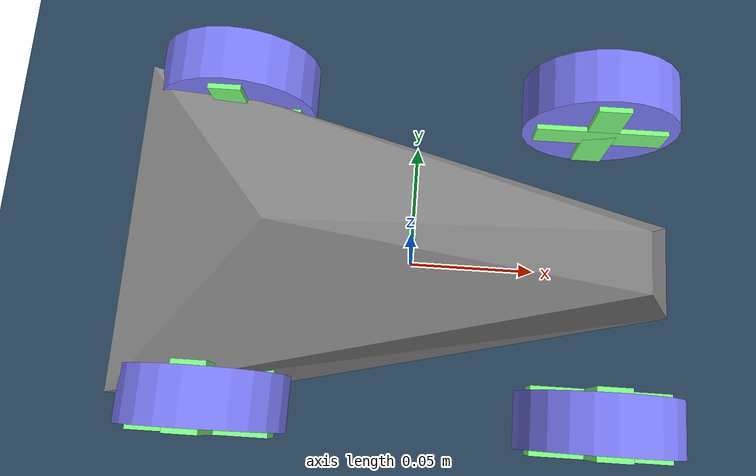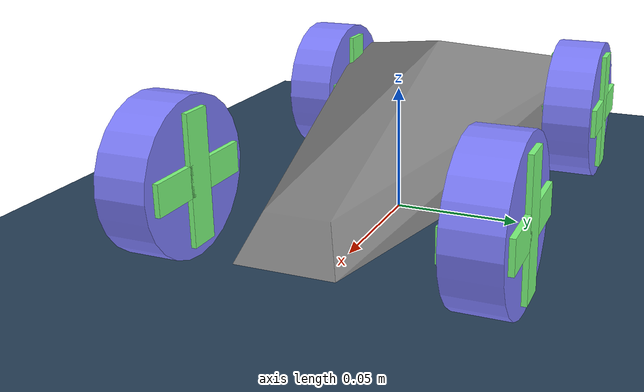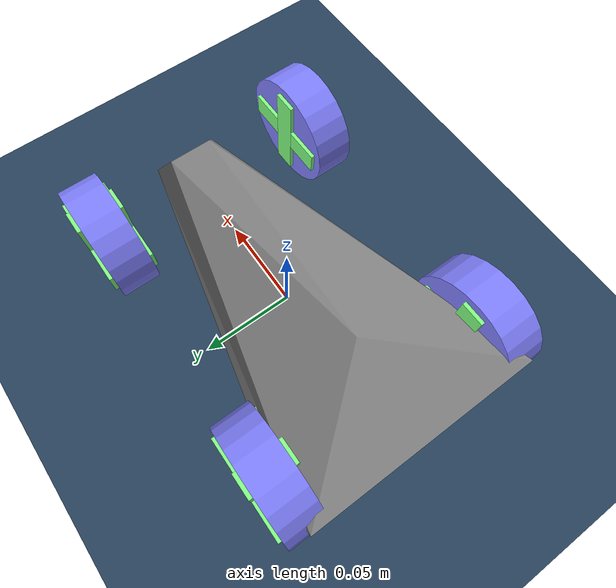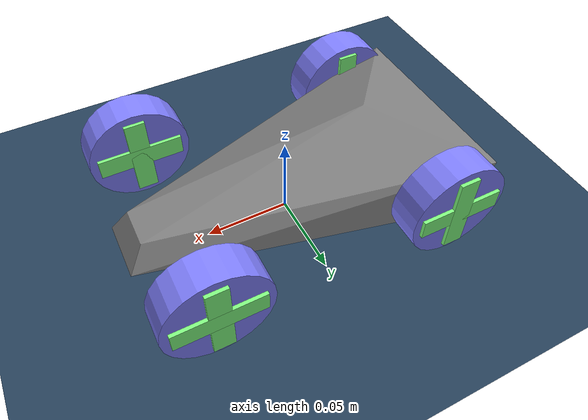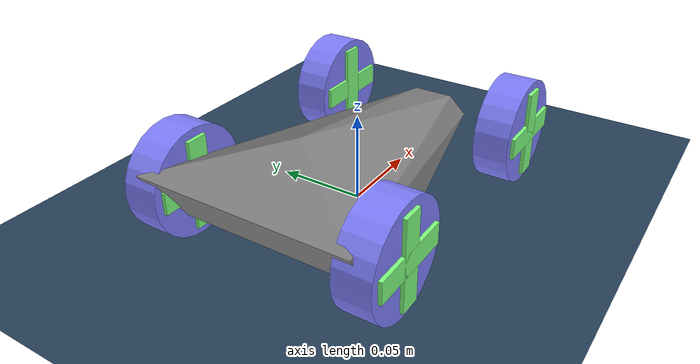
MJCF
<mujoco>
  <compiler autolimits="true"/>
  <asset>
    <texture name="grid" type="2d" builtin="checker" width="512" height="512" rgb1=".1 .2 .3" rgb2=".2 .3 .4"/>
    <material name="grid" texture="grid" texrepeat="1 1" texuniform="true" reflectance=".2"/>
    <mesh name="chasis" scale=".01 .006 .0015"
      vertex=" 9   2   0
              -10  10  10
               9  -2   0
               10  3  -10
               10 -3  -10
              -8   10 -10
              -10 -10  10
              -8  -10 -10
              -5   0   20"/>
  </asset>

  <default>
    <joint damping=".03" actuatorfrcrange="-0.5 0.5"/>
    <default class="wheel">
      <geom type="cylinder" size=".03 .01" rgba=".5 .5 1 1"/>
    </default>
    <default class="decor">
      <site type="box" rgba=".5 1 .5 1"/>
    </default>
  </default>

  <worldbody>
    <geom type="plane" size="0 0 .01" material="grid"/>
    <body name="car" pos="0 0 .03">
      <freejoint/>
      <geom name="chasis" type="mesh" mesh="chasis"/>
      <body name="front_left_hinge" pos=".07 .06 0" zaxis="0 1 0">
        <joint name="steer_left"/>
        <geom class="wheel"/>
        <site class="decor" size=".006 .025 .012"/>
        <site class="decor" size=".025 .006 .012"/>
      </body>

      <body name="front_right_hinge" pos=".07 -.06 0" zaxis="0 1 0">
        <joint name="steer_right"/>
        <geom class="wheel"/>
        <site class="decor" size=".006 .025 .012"/>
        <site class="decor" size=".025 .006 .012"/>
      </body>

      <body name="left wheel" pos="-.07 .06 0" zaxis="0 1 0">
        <joint name="left"/>
        <geom class="wheel"/>
        <site class="decor" size=".006 .025 .012"/>
        <site class="decor" size=".025 .006 .012"/>
      </body>

      <body name="right wheel" pos="-.07 -.06 0" zaxis="0 1 0">
        <joint name="right"/>
        <geom class="wheel"/>
        <site class="decor" size=".006 .025 .012"/>
        <site class="decor" size=".025 .006 .012"/>
      </body>
    </body>
  </worldbody>

  <tendon>
    <fixed name="forward">
      <joint joint="left" coef=".5"/>
      <joint joint="right" coef=".5"/>
    </fixed>
    <fixed name="steer">
      <joint joint="steer_left" coef=".5"/>
      <joint joint="steer_right" coef=".5"/>
    </fixed>
  </tendon>

  <actuator>
    <motor name="forward" tendon="forward" ctrlrange="-1 1"/>
    <motor name="steer" tendon="steer" ctrlrange="-5 5"/>
  </actuator>

  <sensor>
    <jointactuatorfrc name="right" joint="right"/>
    <jointactuatorfrc name="left" joint="left"/>
  </sensor>
</mujoco>
